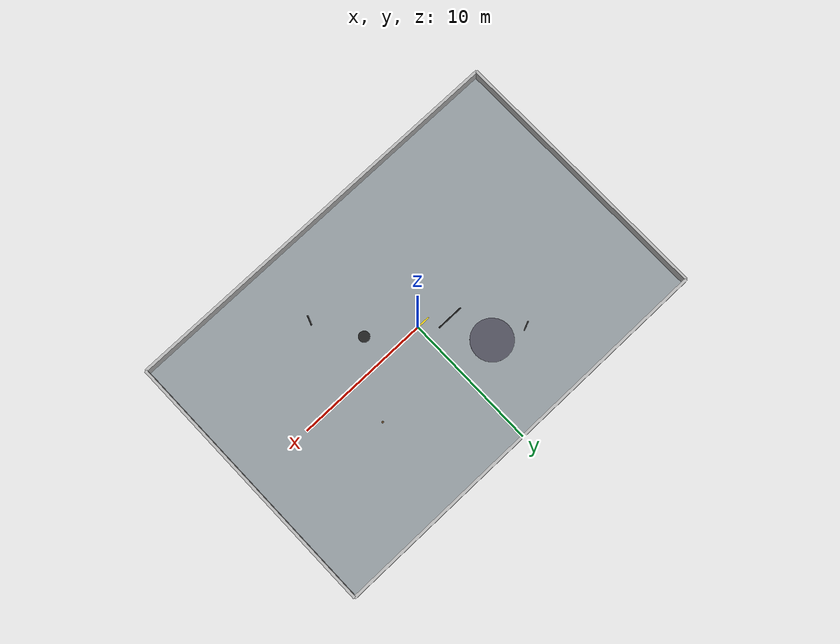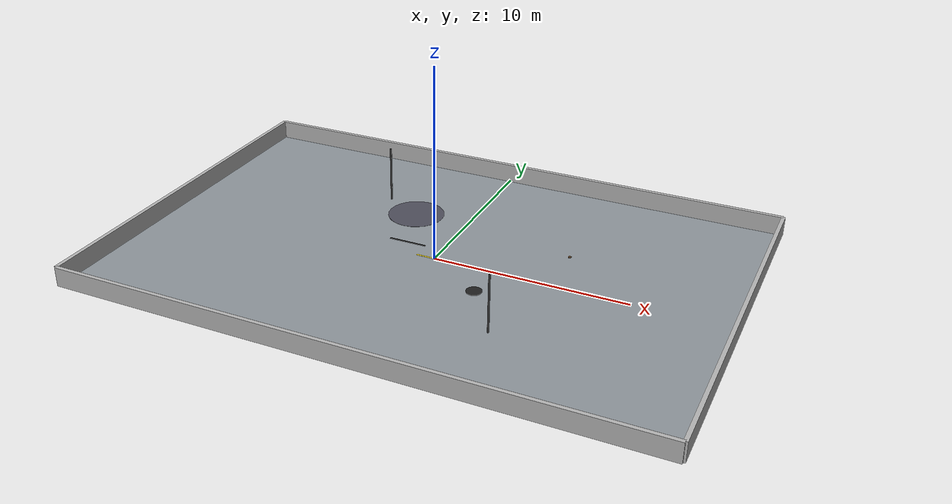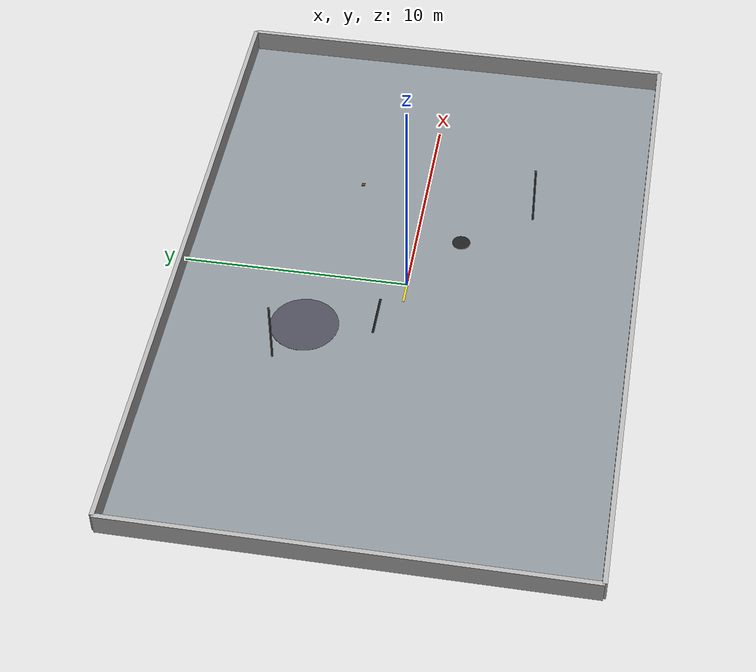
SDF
<?xml version="1.0" ?>
<!--
  CyberLuban 校园路面巡检 Gazebo 世界
  包含: 平面道路 + 路面缺陷(pothole/crack/沉降) + 环境障碍物
  适配 Gazebo Fortress (Ignition Gazebo 6, SDF 1.7)
-->
<sdf version="1.7">
  <world name="road_inspection_world">
    <!-- ============ 物理 ============ -->
    <physics name="1ms" type="ignored">
      <max_step_size>0.001</max_step_size>
      <real_time_factor>1.0</real_time_factor>
    </physics>

    <!-- ============ 插件 ============ -->
    <plugin filename="ignition-gazebo-physics-system" name="ignition::gazebo::systems::Physics"/>
    <plugin filename="ignition-gazebo-user-commands-system" name="ignition::gazebo::systems::UserCommands"/>
    <plugin filename="ignition-gazebo-scene-broadcaster-system" name="ignition::gazebo::systems::SceneBroadcaster"/>
    <plugin filename="ignition-gazebo-contact-system" name="ignition::gazebo::systems::Contact"/>
    <plugin filename="ignition-gazebo-imu-system" name="ignition::gazebo::systems::Imu"/>
    <plugin filename="ignition-gazebo-sensors-system" name="ignition::gazebo::systems::Sensors">
      <render_engine>ogre2</render_engine>
    </plugin>

    <!-- ============ 光照 ============ -->
    <scene>
      <ambient>0.6 0.6 0.6 1</ambient>
      <background>0.7 0.7 0.9 1</background>
      <grid>false</grid>
    </scene>

    <light type="directional" name="sun">
      <cast_shadows>true</cast_shadows>
      <pose>0 0 10 0 0 0</pose>
      <diffuse>0.8 0.8 0.8 1</diffuse>
      <specular>0.2 0.2 0.2 1</specular>
      <attenuation>
        <range>1000</range>
        <constant>0.9</constant>
        <linear>0.01</linear>
        <quadratic>0.001</quadratic>
      </attenuation>
      <direction>-0.5 0.5 -1</direction>
    </light>

    <!-- ============ 道路地面 (30m x 20m 灰色平面) ============ -->
    <model name="road_ground">
      <static>true</static>
      <link name="link">
        <visual name="visual">
          <geometry>
            <plane><normal>0 0 1</normal><size>30 20</size></plane>
          </geometry>
          <material>
            <ambient>0.55 0.58 0.60 1</ambient>
            <diffuse>0.55 0.58 0.60 1</diffuse>
            <specular>0.1 0.1 0.1 1</specular>
          </material>
        </visual>
        <collision name="collision">
          <geometry>
            <plane><normal>0 0 1</normal><size>30 20</size></plane>
          </geometry>
          <surface>
            <friction>
              <ode><mu>100</mu><mu2>100</mu2></ode>
            </friction>
          </surface>
        </collision>
      </link>
    </model>

    <!-- ============ 车道线 (黄色虚线, 视觉参考) ============ -->
    <model name="lane_line_center">
      <static>true</static>
      <pose>0 0 0.001 0 0 0</pose>
      <link name="link">
        <visual name="visual">
          <geometry><box><size>2.0 0.1 0.002</size></box></geometry>
          <material><ambient>0.9 0.8 0.1 1</ambient><diffuse>0.9 0.8 0.1 1</diffuse></material>
        </visual>
      </link>
    </model>

    <!-- ============ 路面缺陷 1: Pothole 凹陷 (中心 3,-2, 半径0.4m, 深3cm) ============ -->
    <!-- 用深色矮圆柱体表示凹陷区域, 高度低于路面让雷达检测到高程突变 -->
    <model name="defect_pothole_1">
      <static>true</static>
      <pose>3.0 -2.0 0.0 0 0 0</pose>
      <link name="link">
        <visual name="visual_pit">
          <pose>0 0 -0.015 0 0 0</pose>
          <geometry><cylinder><radius>0.4</radius><length>0.03</length></cylinder></geometry>
          <material><ambient>0.15 0.15 0.15 1</ambient><diffuse>0.12 0.12 0.12 1</diffuse></material>
        </visual>
        <collision name="collision">
          <pose>0 0 -0.015 0 0 0</pose>
          <geometry><cylinder><radius>0.4</radius><length>0.03</length></cylinder></geometry>
        </collision>
      </link>
    </model>

    <!-- ============ 路面缺陷 2: Crack 裂缝 (纵向, x=-3~-1, y=1, 宽0.1m, 深1.5cm) ============ -->
    <model name="defect_crack_1">
      <static>true</static>
      <pose>-2.0 1.0 0.0 0 0 0</pose>
      <link name="link">
        <visual name="visual_crack">
          <pose>0 0 -0.0075 0 0 0</pose>
          <geometry><box><size>2.0 0.1 0.015</size></box></geometry>
          <material><ambient>0.1 0.1 0.1 1</ambient><diffuse>0.08 0.08 0.08 1</diffuse></material>
        </visual>
        <collision name="collision">
          <pose>0 0 -0.0075 0 0 0</pose>
          <geometry><box><size>2.0 0.1 0.015</size></box></geometry>
        </collision>
      </link>
    </model>

    <!-- ============ 路面缺陷 3: 沉降区域 (中心 -3,4, 半径1.5m, 深1cm) ============ -->
    <model name="defect_subsidence_1">
      <static>true</static>
      <pose>-3.0 4.0 0.0 0 0 0</pose>
      <link name="link">
        <visual name="visual_sub">
          <pose>0 0 -0.005 0 0 0</pose>
          <geometry><cylinder><radius>1.5</radius><length>0.01</length></cylinder></geometry>
          <material><ambient>0.35 0.35 0.40 1</ambient><diffuse>0.30 0.30 0.35 1</diffuse></material>
        </visual>
        <collision name="collision">
          <pose>0 0 -0.005 0 0 0</pose>
          <geometry><cylinder><radius>1.5</radius><length>0.01</length></cylinder></geometry>
        </collision>
      </link>
    </model>

    <!-- ============ 路面缺陷 4: 凸起 (中心 6,3, 小石块 0.15x0.15x0.04m) ============ -->
    <model name="defect_bump_1">
      <static>true</static>
      <pose>6.0 3.0 0.02 0 0 0</pose>
      <link name="link">
        <visual name="visual_bump">
          <geometry><box><size>0.15 0.15 0.04</size></box></geometry>
          <material><ambient>0.4 0.3 0.2 1</ambient><diffuse>0.35 0.25 0.15 1</diffuse></material>
        </visual>
        <collision name="collision">
          <geometry><box><size>0.15 0.15 0.04</size></box></geometry>
        </collision>
      </link>
    </model>

    <!-- ============ 环境障碍物: 路灯杆 ============ -->
    <model name="lamp_post_1">
      <static>true</static>
      <pose>5.0 -5.0 1.5 0 0 0</pose>
      <link name="link">
        <visual name="visual">
          <geometry><cylinder><radius>0.05</radius><length>3.0</length></cylinder></geometry>
          <material><ambient>0.3 0.3 0.3 1</ambient><diffuse>0.2 0.2 0.2 1</diffuse></material>
        </visual>
        <collision name="collision">
          <geometry><cylinder><radius>0.05</radius><length>3.0</length></cylinder></geometry>
        </collision>
      </link>
    </model>
    <model name="lamp_post_2">
      <static>true</static>
      <pose>-5.0 5.0 1.5 0 0 0</pose>
      <link name="link">
        <visual name="visual">
          <geometry><cylinder><radius>0.05</radius><length>3.0</length></cylinder></geometry>
          <material><ambient>0.3 0.3 0.3 1</ambient><diffuse>0.2 0.2 0.2 1</diffuse></material>
        </visual>
        <collision name="collision">
          <geometry><cylinder><radius>0.05</radius><length>3.0</length></cylinder></geometry>
        </collision>
      </link>
    </model>

    <!-- ============ 道路边界墙 (防止机器人跑出场景) ============ -->
    <model name="wall_north">
      <static>true</static>
      <pose>0 10 0.5 0 0 0</pose>
      <link name="link">
        <visual name="visual"><geometry><box><size>30 0.2 1.0</size></box></geometry>
          <material><ambient>0.7 0.7 0.7 1</ambient><diffuse>0.7 0.7 0.7 1</diffuse></material></visual>
        <collision name="collision"><geometry><box><size>30 0.2 1.0</size></box></geometry></collision>
      </link>
    </model>
    <model name="wall_south">
      <static>true</static>
      <pose>0 -10 0.5 0 0 0</pose>
      <link name="link">
        <visual name="visual"><geometry><box><size>30 0.2 1.0</size></box></geometry>
          <material><ambient>0.7 0.7 0.7 1</ambient><diffuse>0.7 0.7 0.7 1</diffuse></material></visual>
        <collision name="collision"><geometry><box><size>30 0.2 1.0</size></box></geometry></collision>
      </link>
    </model>
    <model name="wall_east">
      <static>true</static>
      <pose>15 0 0.5 0 0 0</pose>
      <link name="link">
        <visual name="visual"><geometry><box><size>0.2 20 1.0</size></box></geometry>
          <material><ambient>0.7 0.7 0.7 1</ambient><diffuse>0.7 0.7 0.7 1</diffuse></material></visual>
        <collision name="collision"><geometry><box><size>0.2 20 1.0</size></box></geometry></collision>
      </link>
    </model>
    <model name="wall_west">
      <static>true</static>
      <pose>-15 0 0.5 0 0 0</pose>
      <link name="link">
        <visual name="visual"><geometry><box><size>0.2 20 1.0</size></box></geometry>
          <material><ambient>0.7 0.7 0.7 1</ambient><diffuse>0.7 0.7 0.7 1</diffuse></material></visual>
        <collision name="collision"><geometry><box><size>0.2 20 1.0</size></box></geometry></collision>
      </link>
    </model>

  </world>
</sdf>
